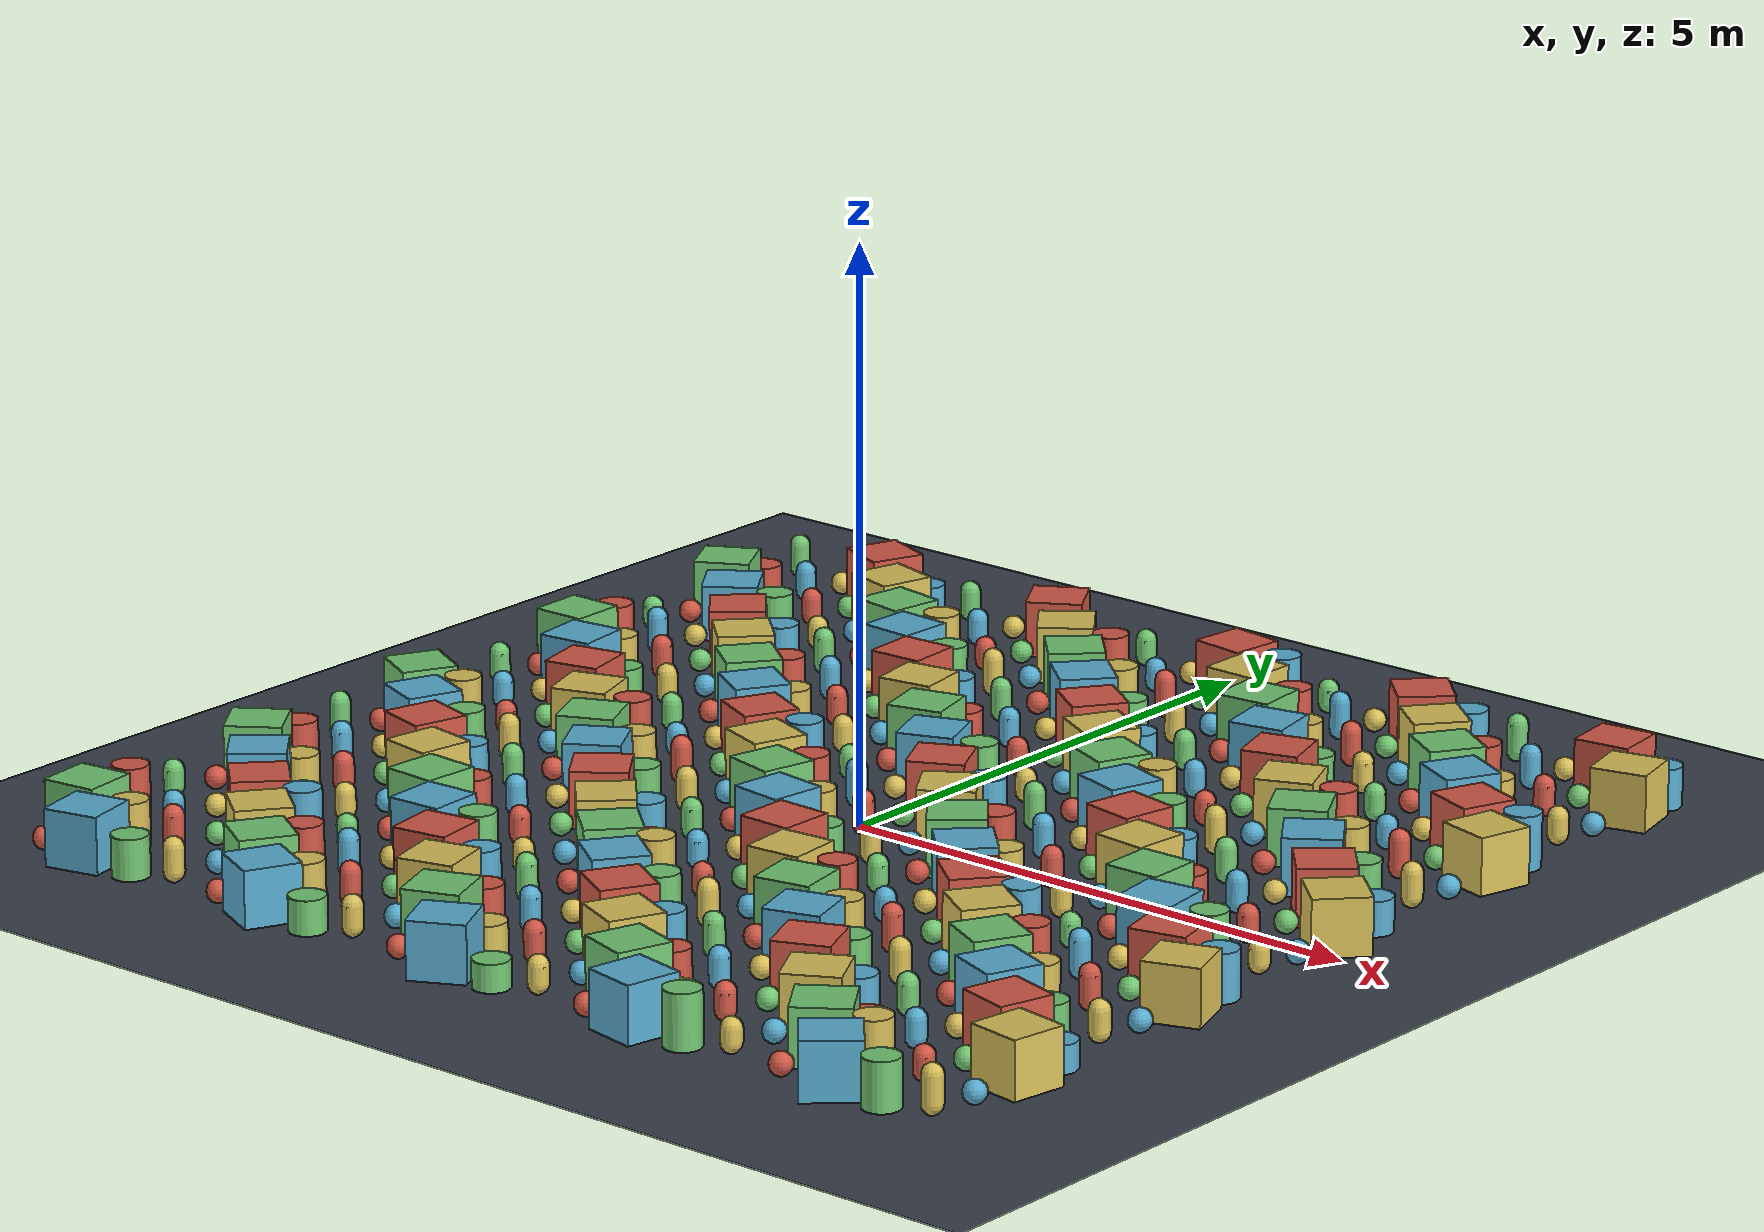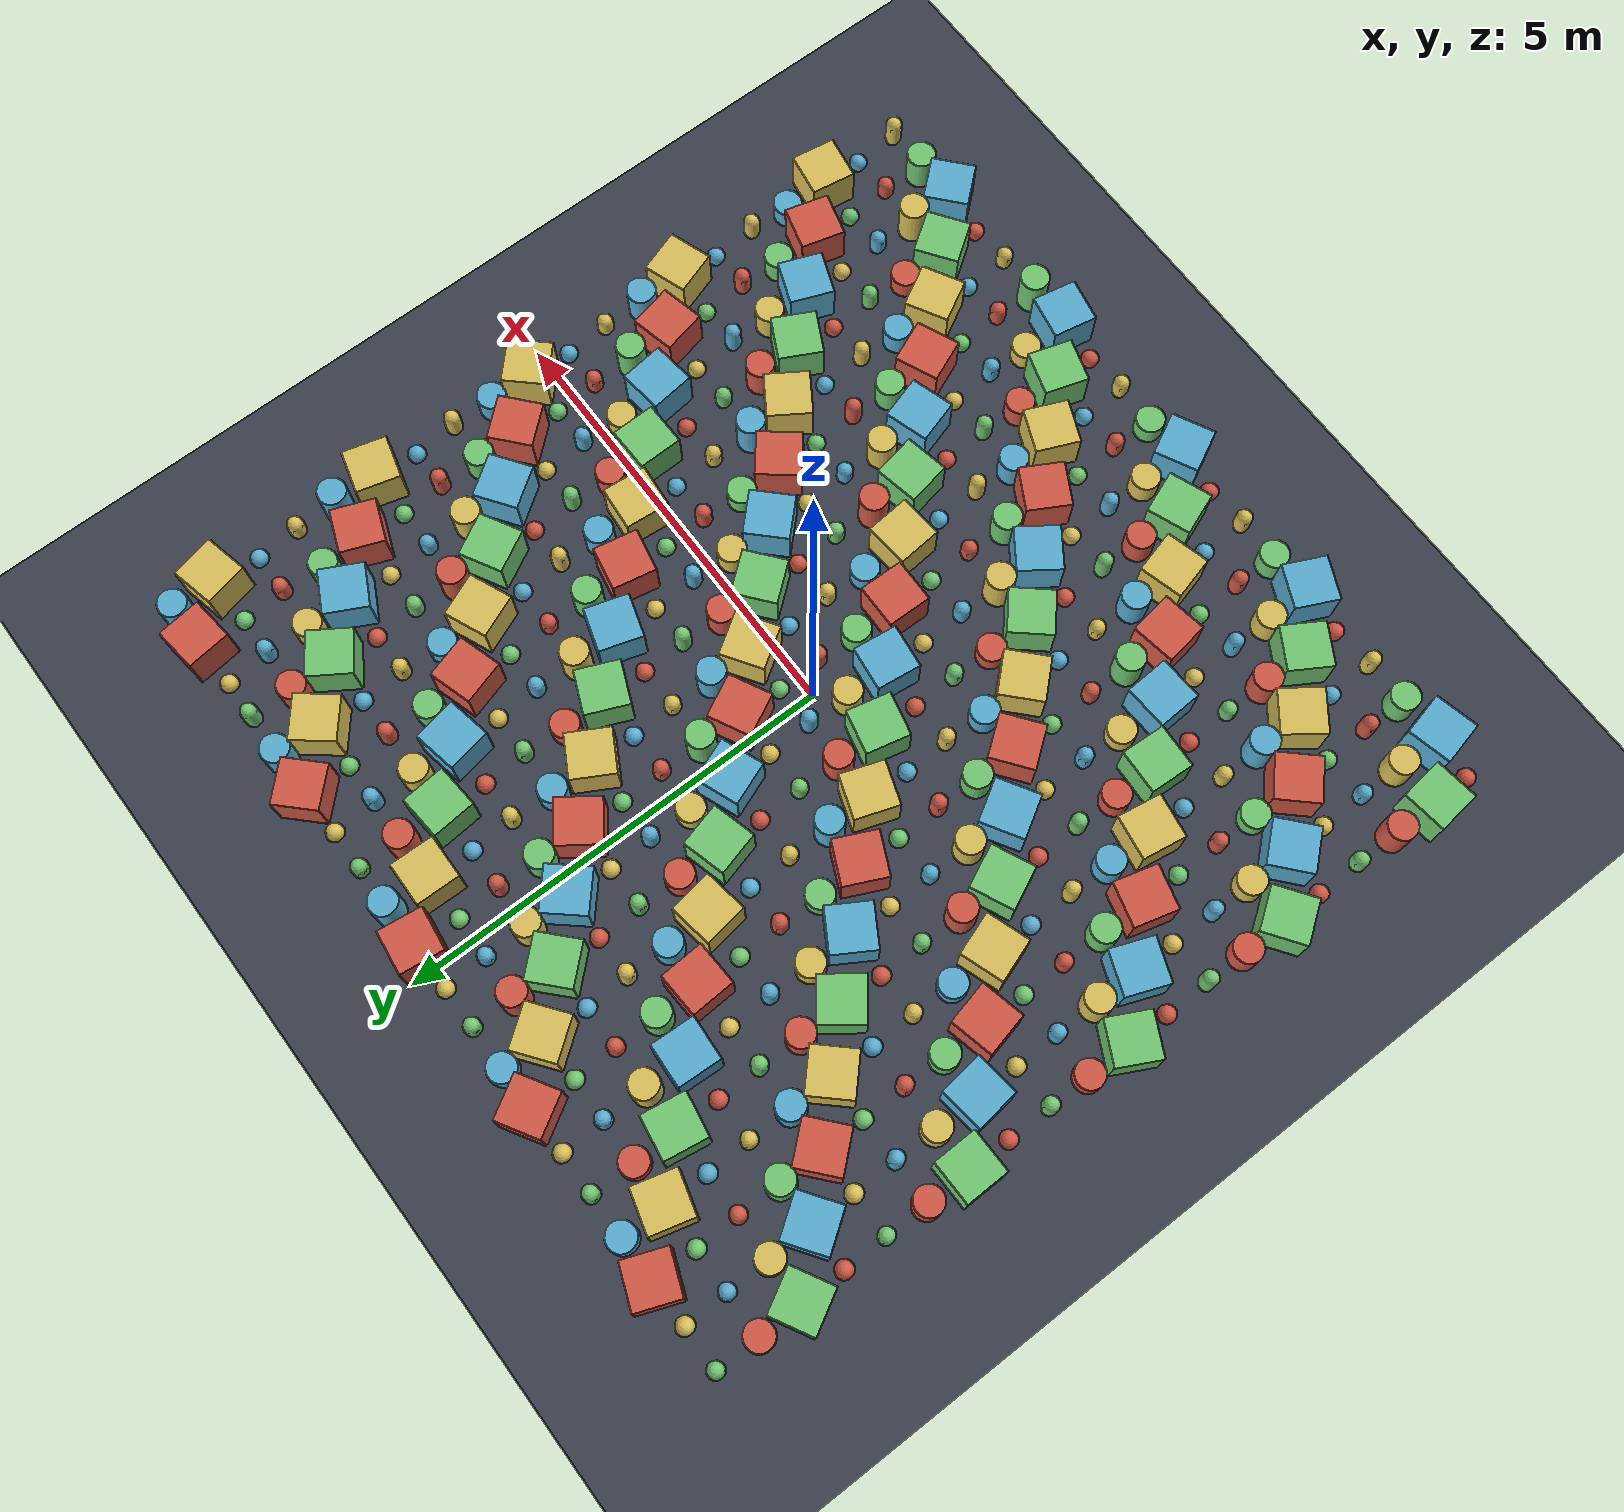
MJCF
<mujoco model="many_objects">
  <compiler angle="degree" autolimits="true"/>

  <visual>
    <headlight ambient="0.25 0.25 0.25" diffuse="0.4 0.4 0.4" specular="0.4 0.4 0.4"/>
    <quality shadowsize="4096" numslices="28" numstacks="16"/>
    <map znear="0.05" zfar="80" shadowclip="1.5" shadowscale="0.6"/>
  </visual>

  <asset>
    <texture name="grid" type="2d" builtin="checker" width="512" height="512"
             rgb1="0.18 0.20 0.24" rgb2="0.27 0.30 0.35"/>
    <material name="grid" texture="grid" texrepeat="1 1" texuniform="true"/>
    <material name="m0" rgba="0.82 0.35 0.28 1" specular="0.4" shininess="0.5"/>
    <material name="m1" rgba="0.35 0.68 0.82 1" specular="0.4" shininess="0.5"/>
    <material name="m2" rgba="0.45 0.78 0.45 1" specular="0.4" shininess="0.5"/>
    <material name="m3" rgba="0.85 0.75 0.35 1" specular="0.4" shininess="0.5"/>
  </asset>

  <worldbody>
    <light name="sun" type="directional" pos="6 -8 10" dir="-0.4 0.55 -1"
           diffuse="0.7 0.7 0.7" specular="0.25 0.25 0.25" castshadow="true"/>

    <geom name="floor" type="plane" size="0 0 0.05" material="grid"/>

    <geom name="g_00_00" type="sphere" pos="-4.75 -4.75 0.100" size="0.100" material="m0"/>
    <geom name="g_00_01" type="box" pos="-4.25 -4.75 0.250" size="0.250 0.250 0.250" euler="0 0 13" material="m1"/>
    <geom name="g_00_02" type="cylinder" pos="-3.75 -4.75 0.180" size="0.160 0.180" material="m2"/>
    <geom name="g_00_03" type="capsule" fromto="-3.25 -4.75 0.150 -3.25 -4.75 0.360" size="0.090" material="m3"/>
    <geom name="g_00_04" type="sphere" pos="-2.75 -4.75 0.100" size="0.100" material="m0"/>
    <geom name="g_00_05" type="box" pos="-2.25 -4.75 0.250" size="0.250 0.250 0.250" euler="0 0 65" material="m1"/>
    <geom name="g_00_06" type="cylinder" pos="-1.75 -4.75 0.150" size="0.160 0.150" material="m2"/>
    <geom name="g_00_07" type="capsule" fromto="-1.25 -4.75 0.150 -1.25 -4.75 0.330" size="0.090" material="m3"/>
    <geom name="g_00_08" type="sphere" pos="-0.75 -4.75 0.100" size="0.100" material="m0"/>
    <geom name="g_00_09" type="box" pos="-0.25 -4.75 0.250" size="0.250 0.250 0.250" euler="0 0 27" material="m1"/>
    <geom name="g_00_10" type="cylinder" pos="0.25 -4.75 0.120" size="0.160 0.120" material="m2"/>
    <geom name="g_00_11" type="capsule" fromto="0.75 -4.75 0.150 0.75 -4.75 0.300" size="0.090" material="m3"/>
    <geom name="g_00_12" type="sphere" pos="1.25 -4.75 0.100" size="0.100" material="m0"/>
    <geom name="g_00_13" type="box" pos="1.75 -4.75 0.250" size="0.250 0.250 0.250" euler="0 0 79" material="m1"/>
    <geom name="g_00_14" type="cylinder" pos="2.25 -4.75 0.240" size="0.160 0.240" material="m2"/>
    <geom name="g_00_15" type="capsule" fromto="2.75 -4.75 0.150 2.75 -4.75 0.270" size="0.090" material="m3"/>
    <geom name="g_00_16" type="sphere" pos="3.25 -4.75 0.100" size="0.100" material="m0"/>
    <geom name="g_00_17" type="box" pos="3.75 -4.75 0.250" size="0.250 0.250 0.250" euler="0 0 41" material="m1"/>
    <geom name="g_00_18" type="cylinder" pos="4.25 -4.75 0.210" size="0.160 0.210" material="m2"/>
    <geom name="g_00_19" type="capsule" fromto="4.75 -4.75 0.150 4.75 -4.75 0.390" size="0.090" material="m3"/>
    <geom name="g_01_00" type="box" pos="-4.75 -4.25 0.250" size="0.250 0.250 0.250" euler="0 0 7" material="m2"/>
    <geom name="g_01_01" type="cylinder" pos="-4.25 -4.25 0.210" size="0.160 0.210" material="m3"/>
    <geom name="g_01_02" type="capsule" fromto="-3.75 -4.25 0.150 -3.75 -4.25 0.390" size="0.090" material="m0"/>
    <geom name="g_01_03" type="sphere" pos="-3.25 -4.25 0.100" size="0.100" material="m1"/>
    <geom name="g_01_04" type="box" pos="-2.75 -4.25 0.250" size="0.250 0.250 0.250" euler="0 0 59" material="m2"/>
    <geom name="g_01_05" type="cylinder" pos="-2.25 -4.25 0.180" size="0.160 0.180" material="m3"/>
    <geom name="g_01_06" type="capsule" fromto="-1.75 -4.25 0.150 -1.75 -4.25 0.360" size="0.090" material="m0"/>
    <geom name="g_01_07" type="sphere" pos="-1.25 -4.25 0.100" size="0.100" material="m1"/>
    <geom name="g_01_08" type="box" pos="-0.75 -4.25 0.250" size="0.250 0.250 0.250" euler="0 0 21" material="m2"/>
    <geom name="g_01_09" type="cylinder" pos="-0.25 -4.25 0.150" size="0.160 0.150" material="m3"/>
    <geom name="g_01_10" type="capsule" fromto="0.25 -4.25 0.150 0.25 -4.25 0.330" size="0.090" material="m0"/>
    <geom name="g_01_11" type="sphere" pos="0.75 -4.25 0.100" size="0.100" material="m1"/>
    <geom name="g_01_12" type="box" pos="1.25 -4.25 0.250" size="0.250 0.250 0.250" euler="0 0 73" material="m2"/>
    <geom name="g_01_13" type="cylinder" pos="1.75 -4.25 0.120" size="0.160 0.120" material="m3"/>
    <geom name="g_01_14" type="capsule" fromto="2.25 -4.25 0.150 2.25 -4.25 0.300" size="0.090" material="m0"/>
    <geom name="g_01_15" type="sphere" pos="2.75 -4.25 0.100" size="0.100" material="m1"/>
    <geom name="g_01_16" type="box" pos="3.25 -4.25 0.250" size="0.250 0.250 0.250" euler="0 0 35" material="m2"/>
    <geom name="g_01_17" type="cylinder" pos="3.75 -4.25 0.240" size="0.160 0.240" material="m3"/>
    <geom name="g_01_18" type="capsule" fromto="4.25 -4.25 0.150 4.25 -4.25 0.270" size="0.090" material="m0"/>
    <geom name="g_01_19" type="sphere" pos="4.75 -4.25 0.100" size="0.100" material="m1"/>
    <geom name="g_02_00" type="cylinder" pos="-4.75 -3.75 0.240" size="0.160 0.240" material="m0"/>
    <geom name="g_02_01" type="capsule" fromto="-4.25 -3.75 0.150 -4.25 -3.75 0.270" size="0.090" material="m1"/>
    <geom name="g_02_02" type="sphere" pos="-3.75 -3.75 0.100" size="0.100" material="m2"/>
    <geom name="g_02_03" type="box" pos="-3.25 -3.75 0.250" size="0.250 0.250 0.250" euler="0 0 53" material="m3"/>
    <geom name="g_02_04" type="cylinder" pos="-2.75 -3.75 0.210" size="0.160 0.210" material="m0"/>
    <geom name="g_02_05" type="capsule" fromto="-2.25 -3.75 0.150 -2.25 -3.75 0.390" size="0.090" material="m1"/>
    <geom name="g_02_06" type="sphere" pos="-1.75 -3.75 0.100" size="0.100" material="m2"/>
    <geom name="g_02_07" type="box" pos="-1.25 -3.75 0.250" size="0.250 0.250 0.250" euler="0 0 15" material="m3"/>
    <geom name="g_02_08" type="cylinder" pos="-0.75 -3.75 0.180" size="0.160 0.180" material="m0"/>
    <geom name="g_02_09" type="capsule" fromto="-0.25 -3.75 0.150 -0.25 -3.75 0.360" size="0.090" material="m1"/>
    <geom name="g_02_10" type="sphere" pos="0.25 -3.75 0.100" size="0.100" material="m2"/>
    <geom name="g_02_11" type="box" pos="0.75 -3.75 0.250" size="0.250 0.250 0.250" euler="0 0 67" material="m3"/>
    <geom name="g_02_12" type="cylinder" pos="1.25 -3.75 0.150" size="0.160 0.150" material="m0"/>
    <geom name="g_02_13" type="capsule" fromto="1.75 -3.75 0.150 1.75 -3.75 0.330" size="0.090" material="m1"/>
    <geom name="g_02_14" type="sphere" pos="2.25 -3.75 0.100" size="0.100" material="m2"/>
    <geom name="g_02_15" type="box" pos="2.75 -3.75 0.250" size="0.250 0.250 0.250" euler="0 0 29" material="m3"/>
    <geom name="g_02_16" type="cylinder" pos="3.25 -3.75 0.120" size="0.160 0.120" material="m0"/>
    <geom name="g_02_17" type="capsule" fromto="3.75 -3.75 0.150 3.75 -3.75 0.300" size="0.090" material="m1"/>
    <geom name="g_02_18" type="sphere" pos="4.25 -3.75 0.100" size="0.100" material="m2"/>
    <geom name="g_02_19" type="box" pos="4.75 -3.75 0.250" size="0.250 0.250 0.250" euler="0 0 81" material="m3"/>
    <geom name="g_03_00" type="capsule" fromto="-4.75 -3.25 0.150 -4.75 -3.25 0.300" size="0.090" material="m2"/>
    <geom name="g_03_01" type="sphere" pos="-4.25 -3.25 0.100" size="0.100" material="m3"/>
    <geom name="g_03_02" type="box" pos="-3.75 -3.25 0.250" size="0.250 0.250 0.250" euler="0 0 47" material="m0"/>
    <geom name="g_03_03" type="cylinder" pos="-3.25 -3.25 0.240" size="0.160 0.240" material="m1"/>
    <geom name="g_03_04" type="capsule" fromto="-2.75 -3.25 0.150 -2.75 -3.25 0.270" size="0.090" material="m2"/>
    <geom name="g_03_05" type="sphere" pos="-2.25 -3.25 0.100" size="0.100" material="m3"/>
    <geom name="g_03_06" type="box" pos="-1.75 -3.25 0.250" size="0.250 0.250 0.250" euler="0 0 9" material="m0"/>
    <geom name="g_03_07" type="cylinder" pos="-1.25 -3.25 0.210" size="0.160 0.210" material="m1"/>
    <geom name="g_03_08" type="capsule" fromto="-0.75 -3.25 0.150 -0.75 -3.25 0.390" size="0.090" material="m2"/>
    <geom name="g_03_09" type="sphere" pos="-0.25 -3.25 0.100" size="0.100" material="m3"/>
    <geom name="g_03_10" type="box" pos="0.25 -3.25 0.250" size="0.250 0.250 0.250" euler="0 0 61" material="m0"/>
    <geom name="g_03_11" type="cylinder" pos="0.75 -3.25 0.180" size="0.160 0.180" material="m1"/>
    <geom name="g_03_12" type="capsule" fromto="1.25 -3.25 0.150 1.25 -3.25 0.360" size="0.090" material="m2"/>
    <geom name="g_03_13" type="sphere" pos="1.75 -3.25 0.100" size="0.100" material="m3"/>
    <geom name="g_03_14" type="box" pos="2.25 -3.25 0.250" size="0.250 0.250 0.250" euler="0 0 23" material="m0"/>
    <geom name="g_03_15" type="cylinder" pos="2.75 -3.25 0.150" size="0.160 0.150" material="m1"/>
    <geom name="g_03_16" type="capsule" fromto="3.25 -3.25 0.150 3.25 -3.25 0.330" size="0.090" material="m2"/>
    <geom name="g_03_17" type="sphere" pos="3.75 -3.25 0.100" size="0.100" material="m3"/>
    <geom name="g_03_18" type="box" pos="4.25 -3.25 0.250" size="0.250 0.250 0.250" euler="0 0 75" material="m0"/>
    <geom name="g_03_19" type="cylinder" pos="4.75 -3.25 0.120" size="0.160 0.120" material="m1"/>
    <geom name="g_04_00" type="sphere" pos="-4.75 -2.75 0.100" size="0.100" material="m0"/>
    <geom name="g_04_01" type="box" pos="-4.25 -2.75 0.250" size="0.250 0.250 0.250" euler="0 0 41" material="m1"/>
    <geom name="g_04_02" type="cylinder" pos="-3.75 -2.75 0.120" size="0.160 0.120" material="m2"/>
    <geom name="g_04_03" type="capsule" fromto="-3.25 -2.75 0.150 -3.25 -2.75 0.300" size="0.090" material="m3"/>
    <geom name="g_04_04" type="sphere" pos="-2.75 -2.75 0.100" size="0.100" material="m0"/>
    <geom name="g_04_05" type="box" pos="-2.25 -2.75 0.250" size="0.250 0.250 0.250" euler="0 0 3" material="m1"/>
    <geom name="g_04_06" type="cylinder" pos="-1.75 -2.75 0.240" size="0.160 0.240" material="m2"/>
    <geom name="g_04_07" type="capsule" fromto="-1.25 -2.75 0.150 -1.25 -2.75 0.270" size="0.090" material="m3"/>
    <geom name="g_04_08" type="sphere" pos="-0.75 -2.75 0.100" size="0.100" material="m0"/>
    <geom name="g_04_09" type="box" pos="-0.25 -2.75 0.250" size="0.250 0.250 0.250" euler="0 0 55" material="m1"/>
    <geom name="g_04_10" type="cylinder" pos="0.25 -2.75 0.210" size="0.160 0.210" material="m2"/>
    <geom name="g_04_11" type="capsule" fromto="0.75 -2.75 0.150 0.75 -2.75 0.390" size="0.090" material="m3"/>
    <geom name="g_04_12" type="sphere" pos="1.25 -2.75 0.100" size="0.100" material="m0"/>
    <geom name="g_04_13" type="box" pos="1.75 -2.75 0.250" size="0.250 0.250 0.250" euler="0 0 17" material="m1"/>
    <geom name="g_04_14" type="cylinder" pos="2.25 -2.75 0.180" size="0.160 0.180" material="m2"/>
    <geom name="g_04_15" type="capsule" fromto="2.75 -2.75 0.150 2.75 -2.75 0.360" size="0.090" material="m3"/>
    <geom name="g_04_16" type="sphere" pos="3.25 -2.75 0.100" size="0.100" material="m0"/>
    <geom name="g_04_17" type="box" pos="3.75 -2.75 0.250" size="0.250 0.250 0.250" euler="0 0 69" material="m1"/>
    <geom name="g_04_18" type="cylinder" pos="4.25 -2.75 0.150" size="0.160 0.150" material="m2"/>
    <geom name="g_04_19" type="capsule" fromto="4.75 -2.75 0.150 4.75 -2.75 0.330" size="0.090" material="m3"/>
    <geom name="g_05_00" type="box" pos="-4.75 -2.25 0.250" size="0.250 0.250 0.250" euler="0 0 35" material="m2"/>
    <geom name="g_05_01" type="cylinder" pos="-4.25 -2.25 0.150" size="0.160 0.150" material="m3"/>
    <geom name="g_05_02" type="capsule" fromto="-3.75 -2.25 0.150 -3.75 -2.25 0.330" size="0.090" material="m0"/>
    <geom name="g_05_03" type="sphere" pos="-3.25 -2.25 0.100" size="0.100" material="m1"/>
    <geom name="g_05_04" type="box" pos="-2.75 -2.25 0.250" size="0.250 0.250 0.250" euler="0 0 87" material="m2"/>
    <geom name="g_05_05" type="cylinder" pos="-2.25 -2.25 0.120" size="0.160 0.120" material="m3"/>
    <geom name="g_05_06" type="capsule" fromto="-1.75 -2.25 0.150 -1.75 -2.25 0.300" size="0.090" material="m0"/>
    <geom name="g_05_07" type="sphere" pos="-1.25 -2.25 0.100" size="0.100" material="m1"/>
    <geom name="g_05_08" type="box" pos="-0.75 -2.25 0.250" size="0.250 0.250 0.250" euler="0 0 49" material="m2"/>
    <geom name="g_05_09" type="cylinder" pos="-0.25 -2.25 0.240" size="0.160 0.240" material="m3"/>
    <geom name="g_05_10" type="capsule" fromto="0.25 -2.25 0.150 0.25 -2.25 0.270" size="0.090" material="m0"/>
    <geom name="g_05_11" type="sphere" pos="0.75 -2.25 0.100" size="0.100" material="m1"/>
    <geom name="g_05_12" type="box" pos="1.25 -2.25 0.250" size="0.250 0.250 0.250" euler="0 0 11" material="m2"/>
    <geom name="g_05_13" type="cylinder" pos="1.75 -2.25 0.210" size="0.160 0.210" material="m3"/>
    <geom name="g_05_14" type="capsule" fromto="2.25 -2.25 0.150 2.25 -2.25 0.390" size="0.090" material="m0"/>
    <geom name="g_05_15" type="sphere" pos="2.75 -2.25 0.100" size="0.100" material="m1"/>
    <geom name="g_05_16" type="box" pos="3.25 -2.25 0.250" size="0.250 0.250 0.250" euler="0 0 63" material="m2"/>
    <geom name="g_05_17" type="cylinder" pos="3.75 -2.25 0.180" size="0.160 0.180" material="m3"/>
    <geom name="g_05_18" type="capsule" fromto="4.25 -2.25 0.150 4.25 -2.25 0.360" size="0.090" material="m0"/>
    <geom name="g_05_19" type="sphere" pos="4.75 -2.25 0.100" size="0.100" material="m1"/>
    <geom name="g_06_00" type="cylinder" pos="-4.75 -1.75 0.180" size="0.160 0.180" material="m0"/>
    <geom name="g_06_01" type="capsule" fromto="-4.25 -1.75 0.150 -4.25 -1.75 0.360" size="0.090" material="m1"/>
    <geom name="g_06_02" type="sphere" pos="-3.75 -1.75 0.100" size="0.100" material="m2"/>
    <geom name="g_06_03" type="box" pos="-3.25 -1.75 0.250" size="0.250 0.250 0.250" euler="0 0 81" material="m3"/>
    <geom name="g_06_04" type="cylinder" pos="-2.75 -1.75 0.150" size="0.160 0.150" material="m0"/>
    <geom name="g_06_05" type="capsule" fromto="-2.25 -1.75 0.150 -2.25 -1.75 0.330" size="0.090" material="m1"/>
    <geom name="g_06_06" type="sphere" pos="-1.75 -1.75 0.100" size="0.100" material="m2"/>
    <geom name="g_06_07" type="box" pos="-1.25 -1.75 0.250" size="0.250 0.250 0.250" euler="0 0 43" material="m3"/>
    <geom name="g_06_08" type="cylinder" pos="-0.75 -1.75 0.120" size="0.160 0.120" material="m0"/>
    <geom name="g_06_09" type="capsule" fromto="-0.25 -1.75 0.150 -0.25 -1.75 0.300" size="0.090" material="m1"/>
    <geom name="g_06_10" type="sphere" pos="0.25 -1.75 0.100" size="0.100" material="m2"/>
    <geom name="g_06_11" type="box" pos="0.75 -1.75 0.250" size="0.250 0.250 0.250" euler="0 0 5" material="m3"/>
    <geom name="g_06_12" type="cylinder" pos="1.25 -1.75 0.240" size="0.160 0.240" material="m0"/>
    <geom name="g_06_13" type="capsule" fromto="1.75 -1.75 0.150 1.75 -1.75 0.270" size="0.090" material="m1"/>
    <geom name="g_06_14" type="sphere" pos="2.25 -1.75 0.100" size="0.100" material="m2"/>
    <geom name="g_06_15" type="box" pos="2.75 -1.75 0.250" size="0.250 0.250 0.250" euler="0 0 57" material="m3"/>
    <geom name="g_06_16" type="cylinder" pos="3.25 -1.75 0.210" size="0.160 0.210" material="m0"/>
    <geom name="g_06_17" type="capsule" fromto="3.75 -1.75 0.150 3.75 -1.75 0.390" size="0.090" material="m1"/>
    <geom name="g_06_18" type="sphere" pos="4.25 -1.75 0.100" size="0.100" material="m2"/>
    <geom name="g_06_19" type="box" pos="4.75 -1.75 0.250" size="0.250 0.250 0.250" euler="0 0 19" material="m3"/>
    <geom name="g_07_00" type="capsule" fromto="-4.75 -1.25 0.150 -4.75 -1.25 0.390" size="0.090" material="m2"/>
    <geom name="g_07_01" type="sphere" pos="-4.25 -1.25 0.100" size="0.100" material="m3"/>
    <geom name="g_07_02" type="box" pos="-3.75 -1.25 0.250" size="0.250 0.250 0.250" euler="0 0 75" material="m0"/>
    <geom name="g_07_03" type="cylinder" pos="-3.25 -1.25 0.180" size="0.160 0.180" material="m1"/>
    <geom name="g_07_04" type="capsule" fromto="-2.75 -1.25 0.150 -2.75 -1.25 0.360" size="0.090" material="m2"/>
    <geom name="g_07_05" type="sphere" pos="-2.25 -1.25 0.100" size="0.100" material="m3"/>
    <geom name="g_07_06" type="box" pos="-1.75 -1.25 0.250" size="0.250 0.250 0.250" euler="0 0 37" material="m0"/>
    <geom name="g_07_07" type="cylinder" pos="-1.25 -1.25 0.150" size="0.160 0.150" material="m1"/>
    <geom name="g_07_08" type="capsule" fromto="-0.75 -1.25 0.150 -0.75 -1.25 0.330" size="0.090" material="m2"/>
    <geom name="g_07_09" type="sphere" pos="-0.25 -1.25 0.100" size="0.100" material="m3"/>
    <geom name="g_07_10" type="box" pos="0.25 -1.25 0.250" size="0.250 0.250 0.250" euler="0 0 89" material="m0"/>
    <geom name="g_07_11" type="cylinder" pos="0.75 -1.25 0.120" size="0.160 0.120" material="m1"/>
    <geom name="g_07_12" type="capsule" fromto="1.25 -1.25 0.150 1.25 -1.25 0.300" size="0.090" material="m2"/>
    <geom name="g_07_13" type="sphere" pos="1.75 -1.25 0.100" size="0.100" material="m3"/>
    <geom name="g_07_14" type="box" pos="2.25 -1.25 0.250" size="0.250 0.250 0.250" euler="0 0 51" material="m0"/>
    <geom name="g_07_15" type="cylinder" pos="2.75 -1.25 0.240" size="0.160 0.240" material="m1"/>
    <geom name="g_07_16" type="capsule" fromto="3.25 -1.25 0.150 3.25 -1.25 0.270" size="0.090" material="m2"/>
    <geom name="g_07_17" type="sphere" pos="3.75 -1.25 0.100" size="0.100" material="m3"/>
    <geom name="g_07_18" type="box" pos="4.25 -1.25 0.250" size="0.250 0.250 0.250" euler="0 0 13" material="m0"/>
    <geom name="g_07_19" type="cylinder" pos="4.75 -1.25 0.210" size="0.160 0.210" material="m1"/>
    <geom name="g_08_00" type="sphere" pos="-4.75 -0.75 0.100" size="0.100" material="m0"/>
    <geom name="g_08_01" type="box" pos="-4.25 -0.75 0.250" size="0.250 0.250 0.250" euler="0 0 69" material="m1"/>
    <geom name="g_08_02" type="cylinder" pos="-3.75 -0.75 0.210" size="0.160 0.210" material="m2"/>
    <geom name="g_08_03" type="capsule" fromto="-3.25 -0.75 0.150 -3.25 -0.75 0.390" size="0.090" material="m3"/>
    <geom name="g_08_04" type="sphere" pos="-2.75 -0.75 0.100" size="0.100" material="m0"/>
    <geom name="g_08_05" type="box" pos="-2.25 -0.75 0.250" size="0.250 0.250 0.250" euler="0 0 31" material="m1"/>
    <geom name="g_08_06" type="cylinder" pos="-1.75 -0.75 0.180" size="0.160 0.180" material="m2"/>
    <geom name="g_08_07" type="capsule" fromto="-1.25 -0.75 0.150 -1.25 -0.75 0.360" size="0.090" material="m3"/>
    <geom name="g_08_08" type="sphere" pos="-0.75 -0.75 0.100" size="0.100" material="m0"/>
    <geom name="g_08_09" type="box" pos="-0.25 -0.75 0.250" size="0.250 0.250 0.250" euler="0 0 83" material="m1"/>
    <geom name="g_08_10" type="cylinder" pos="0.25 -0.75 0.150" size="0.160 0.150" material="m2"/>
    <geom name="g_08_11" type="capsule" fromto="0.75 -0.75 0.150 0.75 -0.75 0.330" size="0.090" material="m3"/>
    <geom name="g_08_12" type="sphere" pos="1.25 -0.75 0.100" size="0.100" material="m0"/>
    <geom name="g_08_13" type="box" pos="1.75 -0.75 0.250" size="0.250 0.250 0.250" euler="0 0 45" material="m1"/>
    <geom name="g_08_14" type="cylinder" pos="2.25 -0.75 0.120" size="0.160 0.120" material="m2"/>
    <geom name="g_08_15" type="capsule" fromto="2.75 -0.75 0.150 2.75 -0.75 0.300" size="0.090" material="m3"/>
    <geom name="g_08_16" type="sphere" pos="3.25 -0.75 0.100" size="0.100" material="m0"/>
    <geom name="g_08_17" type="box" pos="3.75 -0.75 0.250" size="0.250 0.250 0.250" euler="0 0 7" material="m1"/>
    <geom name="g_08_18" type="cylinder" pos="4.25 -0.75 0.240" size="0.160 0.240" material="m2"/>
    <geom name="g_08_19" type="capsule" fromto="4.75 -0.75 0.150 4.75 -0.75 0.270" size="0.090" material="m3"/>
    <geom name="g_09_00" type="box" pos="-4.75 -0.25 0.250" size="0.250 0.250 0.250" euler="0 0 63" material="m2"/>
    <geom name="g_09_01" type="cylinder" pos="-4.25 -0.25 0.240" size="0.160 0.240" material="m3"/>
    <geom name="g_09_02" type="capsule" fromto="-3.75 -0.25 0.150 -3.75 -0.25 0.270" size="0.090" material="m0"/>
    <geom name="g_09_03" type="sphere" pos="-3.25 -0.25 0.100" size="0.100" material="m1"/>
    <geom name="g_09_04" type="box" pos="-2.75 -0.25 0.250" size="0.250 0.250 0.250" euler="0 0 25" material="m2"/>
    <geom name="g_09_05" type="cylinder" pos="-2.25 -0.25 0.210" size="0.160 0.210" material="m3"/>
    <geom name="g_09_06" type="capsule" fromto="-1.75 -0.25 0.150 -1.75 -0.25 0.390" size="0.090" material="m0"/>
    <geom name="g_09_07" type="sphere" pos="-1.25 -0.25 0.100" size="0.100" material="m1"/>
    <geom name="g_09_08" type="box" pos="-0.75 -0.25 0.250" size="0.250 0.250 0.250" euler="0 0 77" material="m2"/>
    <geom name="g_09_09" type="cylinder" pos="-0.25 -0.25 0.180" size="0.160 0.180" material="m3"/>
    <geom name="g_09_10" type="capsule" fromto="0.25 -0.25 0.150 0.25 -0.25 0.360" size="0.090" material="m0"/>
    <geom name="g_09_11" type="sphere" pos="0.75 -0.25 0.100" size="0.100" material="m1"/>
    <geom name="g_09_12" type="box" pos="1.25 -0.25 0.250" size="0.250 0.250 0.250" euler="0 0 39" material="m2"/>
    <geom name="g_09_13" type="cylinder" pos="1.75 -0.25 0.150" size="0.160 0.150" material="m3"/>
    <geom name="g_09_14" type="capsule" fromto="2.25 -0.25 0.150 2.25 -0.25 0.330" size="0.090" material="m0"/>
    <geom name="g_09_15" type="sphere" pos="2.75 -0.25 0.100" size="0.100" material="m1"/>
    <geom name="g_09_16" type="box" pos="3.25 -0.25 0.250" size="0.250 0.250 0.250" euler="0 0 1" material="m2"/>
    <geom name="g_09_17" type="cylinder" pos="3.75 -0.25 0.120" size="0.160 0.120" material="m3"/>
    <geom name="g_09_18" type="capsule" fromto="4.25 -0.25 0.150 4.25 -0.25 0.300" size="0.090" material="m0"/>
    <geom name="g_09_19" type="sphere" pos="4.75 -0.25 0.100" size="0.100" material="m1"/>
    <geom name="g_10_00" type="cylinder" pos="-4.75 0.25 0.120" size="0.160 0.120" material="m0"/>
    <geom name="g_10_01" type="capsule" fromto="-4.25 0.25 0.150 -4.25 0.25 0.300" size="0.090" material="m1"/>
    <geom name="g_10_02" type="sphere" pos="-3.75 0.25 0.100" size="0.100" material="m2"/>
    <geom name="g_10_03" type="box" pos="-3.25 0.25 0.250" size="0.250 0.250 0.250" euler="0 0 19" material="m3"/>
    <geom name="g_10_04" type="cylinder" pos="-2.75 0.25 0.240" size="0.160 0.240" material="m0"/>
    <geom name="g_10_05" type="capsule" fromto="-2.25 0.25 0.150 -2.25 0.25 0.270" size="0.090" material="m1"/>
    <geom name="g_10_06" type="sphere" pos="-1.75 0.25 0.100" size="0.100" material="m2"/>
    <geom name="g_10_07" type="box" pos="-1.25 0.25 0.250" size="0.250 0.250 0.250" euler="0 0 71" material="m3"/>
    <geom name="g_10_08" type="cylinder" pos="-0.75 0.25 0.210" size="0.160 0.210" material="m0"/>
    <geom name="g_10_09" type="capsule" fromto="-0.25 0.25 0.150 -0.25 0.25 0.390" size="0.090" material="m1"/>
    <geom name="g_10_10" type="sphere" pos="0.25 0.25 0.100" size="0.100" material="m2"/>
    <geom name="g_10_11" type="box" pos="0.75 0.25 0.250" size="0.250 0.250 0.250" euler="0 0 33" material="m3"/>
    <geom name="g_10_12" type="cylinder" pos="1.25 0.25 0.180" size="0.160 0.180" material="m0"/>
    <geom name="g_10_13" type="capsule" fromto="1.75 0.25 0.150 1.75 0.25 0.360" size="0.090" material="m1"/>
    <geom name="g_10_14" type="sphere" pos="2.25 0.25 0.100" size="0.100" material="m2"/>
    <geom name="g_10_15" type="box" pos="2.75 0.25 0.250" size="0.250 0.250 0.250" euler="0 0 85" material="m3"/>
    <geom name="g_10_16" type="cylinder" pos="3.25 0.25 0.150" size="0.160 0.150" material="m0"/>
    <geom name="g_10_17" type="capsule" fromto="3.75 0.25 0.150 3.75 0.25 0.330" size="0.090" material="m1"/>
    <geom name="g_10_18" type="sphere" pos="4.25 0.25 0.100" size="0.100" material="m2"/>
    <geom name="g_10_19" type="box" pos="4.75 0.25 0.250" size="0.250 0.250 0.250" euler="0 0 47" material="m3"/>
    <geom name="g_11_00" type="capsule" fromto="-4.75 0.75 0.150 -4.75 0.75 0.330" size="0.090" material="m2"/>
    <geom name="g_11_01" type="sphere" pos="-4.25 0.75 0.100" size="0.100" material="m3"/>
    <geom name="g_11_02" type="box" pos="-3.75 0.75 0.250" size="0.250 0.250 0.250" euler="0 0 13" material="m0"/>
    <geom name="g_11_03" type="cylinder" pos="-3.25 0.75 0.120" size="0.160 0.120" material="m1"/>
    <geom name="g_11_04" type="capsule" fromto="-2.75 0.75 0.150 -2.75 0.75 0.300" size="0.090" material="m2"/>
    <geom name="g_11_05" type="sphere" pos="-2.25 0.75 0.100" size="0.100" material="m3"/>
    <geom name="g_11_06" type="box" pos="-1.75 0.75 0.250" size="0.250 0.250 0.250" euler="0 0 65" material="m0"/>
    <geom name="g_11_07" type="cylinder" pos="-1.25 0.75 0.240" size="0.160 0.240" material="m1"/>
    <geom name="g_11_08" type="capsule" fromto="-0.75 0.75 0.150 -0.75 0.75 0.270" size="0.090" material="m2"/>
    <geom name="g_11_09" type="sphere" pos="-0.25 0.75 0.100" size="0.100" material="m3"/>
    <geom name="g_11_10" type="box" pos="0.25 0.75 0.250" size="0.250 0.250 0.250" euler="0 0 27" material="m0"/>
    <geom name="g_11_11" type="cylinder" pos="0.75 0.75 0.210" size="0.160 0.210" material="m1"/>
    <geom name="g_11_12" type="capsule" fromto="1.25 0.75 0.150 1.25 0.75 0.390" size="0.090" material="m2"/>
    <geom name="g_11_13" type="sphere" pos="1.75 0.75 0.100" size="0.100" material="m3"/>
    <geom name="g_11_14" type="box" pos="2.25 0.75 0.250" size="0.250 0.250 0.250" euler="0 0 79" material="m0"/>
    <geom name="g_11_15" type="cylinder" pos="2.75 0.75 0.180" size="0.160 0.180" material="m1"/>
    <geom name="g_11_16" type="capsule" fromto="3.25 0.75 0.150 3.25 0.75 0.360" size="0.090" material="m2"/>
    <geom name="g_11_17" type="sphere" pos="3.75 0.75 0.100" size="0.100" material="m3"/>
    <geom name="g_11_18" type="box" pos="4.25 0.75 0.250" size="0.250 0.250 0.250" euler="0 0 41" material="m0"/>
    <geom name="g_11_19" type="cylinder" pos="4.75 0.75 0.150" size="0.160 0.150" material="m1"/>
    <geom name="g_12_00" type="sphere" pos="-4.75 1.25 0.100" size="0.100" material="m0"/>
    <geom name="g_12_01" type="box" pos="-4.25 1.25 0.250" size="0.250 0.250 0.250" euler="0 0 7" material="m1"/>
    <geom name="g_12_02" type="cylinder" pos="-3.75 1.25 0.150" size="0.160 0.150" material="m2"/>
    <geom name="g_12_03" type="capsule" fromto="-3.25 1.25 0.150 -3.25 1.25 0.330" size="0.090" material="m3"/>
    <geom name="g_12_04" type="sphere" pos="-2.75 1.25 0.100" size="0.100" material="m0"/>
    <geom name="g_12_05" type="box" pos="-2.25 1.25 0.250" size="0.250 0.250 0.250" euler="0 0 59" material="m1"/>
    <geom name="g_12_06" type="cylinder" pos="-1.75 1.25 0.120" size="0.160 0.120" material="m2"/>
    <geom name="g_12_07" type="capsule" fromto="-1.25 1.25 0.150 -1.25 1.25 0.300" size="0.090" material="m3"/>
    <geom name="g_12_08" type="sphere" pos="-0.75 1.25 0.100" size="0.100" material="m0"/>
    <geom name="g_12_09" type="box" pos="-0.25 1.25 0.250" size="0.250 0.250 0.250" euler="0 0 21" material="m1"/>
    <geom name="g_12_10" type="cylinder" pos="0.25 1.25 0.240" size="0.160 0.240" material="m2"/>
    <geom name="g_12_11" type="capsule" fromto="0.75 1.25 0.150 0.75 1.25 0.270" size="0.090" material="m3"/>
    <geom name="g_12_12" type="sphere" pos="1.25 1.25 0.100" size="0.100" material="m0"/>
    <geom name="g_12_13" type="box" pos="1.75 1.25 0.250" size="0.250 0.250 0.250" euler="0 0 73" material="m1"/>
    <geom name="g_12_14" type="cylinder" pos="2.25 1.25 0.210" size="0.160 0.210" material="m2"/>
    <geom name="g_12_15" type="capsule" fromto="2.75 1.25 0.150 2.75 1.25 0.390" size="0.090" material="m3"/>
    <geom name="g_12_16" type="sphere" pos="3.25 1.25 0.100" size="0.100" material="m0"/>
    <geom name="g_12_17" type="box" pos="3.75 1.25 0.250" size="0.250 0.250 0.250" euler="0 0 35" material="m1"/>
    <geom name="g_12_18" type="cylinder" pos="4.25 1.25 0.180" size="0.160 0.180" material="m2"/>
    <geom name="g_12_19" type="capsule" fromto="4.75 1.25 0.150 4.75 1.25 0.360" size="0.090" material="m3"/>
    <geom name="g_13_00" type="box" pos="-4.75 1.75 0.250" size="0.250 0.250 0.250" euler="0 0 1" material="m2"/>
    <geom name="g_13_01" type="cylinder" pos="-4.25 1.75 0.180" size="0.160 0.180" material="m3"/>
    <geom name="g_13_02" type="capsule" fromto="-3.75 1.75 0.150 -3.75 1.75 0.360" size="0.090" material="m0"/>
    <geom name="g_13_03" type="sphere" pos="-3.25 1.75 0.100" size="0.100" material="m1"/>
    <geom name="g_13_04" type="box" pos="-2.75 1.75 0.250" size="0.250 0.250 0.250" euler="0 0 53" material="m2"/>
    <geom name="g_13_05" type="cylinder" pos="-2.25 1.75 0.150" size="0.160 0.150" material="m3"/>
    <geom name="g_13_06" type="capsule" fromto="-1.75 1.75 0.150 -1.75 1.75 0.330" size="0.090" material="m0"/>
    <geom name="g_13_07" type="sphere" pos="-1.25 1.75 0.100" size="0.100" material="m1"/>
    <geom name="g_13_08" type="box" pos="-0.75 1.75 0.250" size="0.250 0.250 0.250" euler="0 0 15" material="m2"/>
    <geom name="g_13_09" type="cylinder" pos="-0.25 1.75 0.120" size="0.160 0.120" material="m3"/>
    <geom name="g_13_10" type="capsule" fromto="0.25 1.75 0.150 0.25 1.75 0.300" size="0.090" material="m0"/>
    <geom name="g_13_11" type="sphere" pos="0.75 1.75 0.100" size="0.100" material="m1"/>
    <geom name="g_13_12" type="box" pos="1.25 1.75 0.250" size="0.250 0.250 0.250" euler="0 0 67" material="m2"/>
    <geom name="g_13_13" type="cylinder" pos="1.75 1.75 0.240" size="0.160 0.240" material="m3"/>
    <geom name="g_13_14" type="capsule" fromto="2.25 1.75 0.150 2.25 1.75 0.270" size="0.090" material="m0"/>
    <geom name="g_13_15" type="sphere" pos="2.75 1.75 0.100" size="0.100" material="m1"/>
    <geom name="g_13_16" type="box" pos="3.25 1.75 0.250" size="0.250 0.250 0.250" euler="0 0 29" material="m2"/>
    <geom name="g_13_17" type="cylinder" pos="3.75 1.75 0.210" size="0.160 0.210" material="m3"/>
    <geom name="g_13_18" type="capsule" fromto="4.25 1.75 0.150 4.25 1.75 0.390" size="0.090" material="m0"/>
    <geom name="g_13_19" type="sphere" pos="4.75 1.75 0.100" size="0.100" material="m1"/>
    <geom name="g_14_00" type="cylinder" pos="-4.75 2.25 0.210" size="0.160 0.210" material="m0"/>
    <geom name="g_14_01" type="capsule" fromto="-4.25 2.25 0.150 -4.25 2.25 0.390" size="0.090" material="m1"/>
    <geom name="g_14_02" type="sphere" pos="-3.75 2.25 0.100" size="0.100" material="m2"/>
    <geom name="g_14_03" type="box" pos="-3.25 2.25 0.250" size="0.250 0.250 0.250" euler="0 0 47" material="m3"/>
    <geom name="g_14_04" type="cylinder" pos="-2.75 2.25 0.180" size="0.160 0.180" material="m0"/>
    <geom name="g_14_05" type="capsule" fromto="-2.25 2.25 0.150 -2.25 2.25 0.360" size="0.090" material="m1"/>
    <geom name="g_14_06" type="sphere" pos="-1.75 2.25 0.100" size="0.100" material="m2"/>
    <geom name="g_14_07" type="box" pos="-1.25 2.25 0.250" size="0.250 0.250 0.250" euler="0 0 9" material="m3"/>
    <geom name="g_14_08" type="cylinder" pos="-0.75 2.25 0.150" size="0.160 0.150" material="m0"/>
    <geom name="g_14_09" type="capsule" fromto="-0.25 2.25 0.150 -0.25 2.25 0.330" size="0.090" material="m1"/>
    <geom name="g_14_10" type="sphere" pos="0.25 2.25 0.100" size="0.100" material="m2"/>
    <geom name="g_14_11" type="box" pos="0.75 2.25 0.250" size="0.250 0.250 0.250" euler="0 0 61" material="m3"/>
    <geom name="g_14_12" type="cylinder" pos="1.25 2.25 0.120" size="0.160 0.120" material="m0"/>
    <geom name="g_14_13" type="capsule" fromto="1.75 2.25 0.150 1.75 2.25 0.300" size="0.090" material="m1"/>
    <geom name="g_14_14" type="sphere" pos="2.25 2.25 0.100" size="0.100" material="m2"/>
    <geom name="g_14_15" type="box" pos="2.75 2.25 0.250" size="0.250 0.250 0.250" euler="0 0 23" material="m3"/>
    <geom name="g_14_16" type="cylinder" pos="3.25 2.25 0.240" size="0.160 0.240" material="m0"/>
    <geom name="g_14_17" type="capsule" fromto="3.75 2.25 0.150 3.75 2.25 0.270" size="0.090" material="m1"/>
    <geom name="g_14_18" type="sphere" pos="4.25 2.25 0.100" size="0.100" material="m2"/>
    <geom name="g_14_19" type="box" pos="4.75 2.25 0.250" size="0.250 0.250 0.250" euler="0 0 75" material="m3"/>
    <geom name="g_15_00" type="capsule" fromto="-4.75 2.75 0.150 -4.75 2.75 0.270" size="0.090" material="m2"/>
    <geom name="g_15_01" type="sphere" pos="-4.25 2.75 0.100" size="0.100" material="m3"/>
    <geom name="g_15_02" type="box" pos="-3.75 2.75 0.250" size="0.250 0.250 0.250" euler="0 0 41" material="m0"/>
    <geom name="g_15_03" type="cylinder" pos="-3.25 2.75 0.210" size="0.160 0.210" material="m1"/>
    <geom name="g_15_04" type="capsule" fromto="-2.75 2.75 0.150 -2.75 2.75 0.390" size="0.090" material="m2"/>
    <geom name="g_15_05" type="sphere" pos="-2.25 2.75 0.100" size="0.100" material="m3"/>
    <geom name="g_15_06" type="box" pos="-1.75 2.75 0.250" size="0.250 0.250 0.250" euler="0 0 3" material="m0"/>
    <geom name="g_15_07" type="cylinder" pos="-1.25 2.75 0.180" size="0.160 0.180" material="m1"/>
    <geom name="g_15_08" type="capsule" fromto="-0.75 2.75 0.150 -0.75 2.75 0.360" size="0.090" material="m2"/>
    <geom name="g_15_09" type="sphere" pos="-0.25 2.75 0.100" size="0.100" material="m3"/>
    <geom name="g_15_10" type="box" pos="0.25 2.75 0.250" size="0.250 0.250 0.250" euler="0 0 55" material="m0"/>
    <geom name="g_15_11" type="cylinder" pos="0.75 2.75 0.150" size="0.160 0.150" material="m1"/>
    <geom name="g_15_12" type="capsule" fromto="1.25 2.75 0.150 1.25 2.75 0.330" size="0.090" material="m2"/>
    <geom name="g_15_13" type="sphere" pos="1.75 2.75 0.100" size="0.100" material="m3"/>
    <geom name="g_15_14" type="box" pos="2.25 2.75 0.250" size="0.250 0.250 0.250" euler="0 0 17" material="m0"/>
    <geom name="g_15_15" type="cylinder" pos="2.75 2.75 0.120" size="0.160 0.120" material="m1"/>
    <geom name="g_15_16" type="capsule" fromto="3.25 2.75 0.150 3.25 2.75 0.300" size="0.090" material="m2"/>
    <geom name="g_15_17" type="sphere" pos="3.75 2.75 0.100" size="0.100" material="m3"/>
    <geom name="g_15_18" type="box" pos="4.25 2.75 0.250" size="0.250 0.250 0.250" euler="0 0 69" material="m0"/>
    <geom name="g_15_19" type="cylinder" pos="4.75 2.75 0.240" size="0.160 0.240" material="m1"/>
    <geom name="g_16_00" type="sphere" pos="-4.75 3.25 0.100" size="0.100" material="m0"/>
    <geom name="g_16_01" type="box" pos="-4.25 3.25 0.250" size="0.250 0.250 0.250" euler="0 0 35" material="m1"/>
    <geom name="g_16_02" type="cylinder" pos="-3.75 3.25 0.240" size="0.160 0.240" material="m2"/>
    <geom name="g_16_03" type="capsule" fromto="-3.25 3.25 0.150 -3.25 3.25 0.270" size="0.090" material="m3"/>
    <geom name="g_16_04" type="sphere" pos="-2.75 3.25 0.100" size="0.100" material="m0"/>
    <geom name="g_16_05" type="box" pos="-2.25 3.25 0.250" size="0.250 0.250 0.250" euler="0 0 87" material="m1"/>
    <geom name="g_16_06" type="cylinder" pos="-1.75 3.25 0.210" size="0.160 0.210" material="m2"/>
    <geom name="g_16_07" type="capsule" fromto="-1.25 3.25 0.150 -1.25 3.25 0.390" size="0.090" material="m3"/>
    <geom name="g_16_08" type="sphere" pos="-0.75 3.25 0.100" size="0.100" material="m0"/>
    <geom name="g_16_09" type="box" pos="-0.25 3.25 0.250" size="0.250 0.250 0.250" euler="0 0 49" material="m1"/>
    <geom name="g_16_10" type="cylinder" pos="0.25 3.25 0.180" size="0.160 0.180" material="m2"/>
    <geom name="g_16_11" type="capsule" fromto="0.75 3.25 0.150 0.75 3.25 0.360" size="0.090" material="m3"/>
    <geom name="g_16_12" type="sphere" pos="1.25 3.25 0.100" size="0.100" material="m0"/>
    <geom name="g_16_13" type="box" pos="1.75 3.25 0.250" size="0.250 0.250 0.250" euler="0 0 11" material="m1"/>
    <geom name="g_16_14" type="cylinder" pos="2.25 3.25 0.150" size="0.160 0.150" material="m2"/>
    <geom name="g_16_15" type="capsule" fromto="2.75 3.25 0.150 2.75 3.25 0.330" size="0.090" material="m3"/>
    <geom name="g_16_16" type="sphere" pos="3.25 3.25 0.100" size="0.100" material="m0"/>
    <geom name="g_16_17" type="box" pos="3.75 3.25 0.250" size="0.250 0.250 0.250" euler="0 0 63" material="m1"/>
    <geom name="g_16_18" type="cylinder" pos="4.25 3.25 0.120" size="0.160 0.120" material="m2"/>
    <geom name="g_16_19" type="capsule" fromto="4.75 3.25 0.150 4.75 3.25 0.300" size="0.090" material="m3"/>
    <geom name="g_17_00" type="box" pos="-4.75 3.75 0.250" size="0.250 0.250 0.250" euler="0 0 29" material="m2"/>
    <geom name="g_17_01" type="cylinder" pos="-4.25 3.75 0.120" size="0.160 0.120" material="m3"/>
    <geom name="g_17_02" type="capsule" fromto="-3.75 3.75 0.150 -3.75 3.75 0.300" size="0.090" material="m0"/>
    <geom name="g_17_03" type="sphere" pos="-3.25 3.75 0.100" size="0.100" material="m1"/>
    <geom name="g_17_04" type="box" pos="-2.75 3.75 0.250" size="0.250 0.250 0.250" euler="0 0 81" material="m2"/>
    <geom name="g_17_05" type="cylinder" pos="-2.25 3.75 0.240" size="0.160 0.240" material="m3"/>
    <geom name="g_17_06" type="capsule" fromto="-1.75 3.75 0.150 -1.75 3.75 0.270" size="0.090" material="m0"/>
    <geom name="g_17_07" type="sphere" pos="-1.25 3.75 0.100" size="0.100" material="m1"/>
    <geom name="g_17_08" type="box" pos="-0.75 3.75 0.250" size="0.250 0.250 0.250" euler="0 0 43" material="m2"/>
    <geom name="g_17_09" type="cylinder" pos="-0.25 3.75 0.210" size="0.160 0.210" material="m3"/>
    <geom name="g_17_10" type="capsule" fromto="0.25 3.75 0.150 0.25 3.75 0.390" size="0.090" material="m0"/>
    <geom name="g_17_11" type="sphere" pos="0.75 3.75 0.100" size="0.100" material="m1"/>
    <geom name="g_17_12" type="box" pos="1.25 3.75 0.250" size="0.250 0.250 0.250" euler="0 0 5" material="m2"/>
    <geom name="g_17_13" type="cylinder" pos="1.75 3.75 0.180" size="0.160 0.180" material="m3"/>
    <geom name="g_17_14" type="capsule" fromto="2.25 3.75 0.150 2.25 3.75 0.360" size="0.090" material="m0"/>
    <geom name="g_17_15" type="sphere" pos="2.75 3.75 0.100" size="0.100" material="m1"/>
    <geom name="g_17_16" type="box" pos="3.25 3.75 0.250" size="0.250 0.250 0.250" euler="0 0 57" material="m2"/>
    <geom name="g_17_17" type="cylinder" pos="3.75 3.75 0.150" size="0.160 0.150" material="m3"/>
    <geom name="g_17_18" type="capsule" fromto="4.25 3.75 0.150 4.25 3.75 0.330" size="0.090" material="m0"/>
    <geom name="g_17_19" type="sphere" pos="4.75 3.75 0.100" size="0.100" material="m1"/>
    <geom name="g_18_00" type="cylinder" pos="-4.75 4.25 0.150" size="0.160 0.150" material="m0"/>
    <geom name="g_18_01" type="capsule" fromto="-4.25 4.25 0.150 -4.25 4.25 0.330" size="0.090" material="m1"/>
    <geom name="g_18_02" type="sphere" pos="-3.75 4.25 0.100" size="0.100" material="m2"/>
    <geom name="g_18_03" type="box" pos="-3.25 4.25 0.250" size="0.250 0.250 0.250" euler="0 0 75" material="m3"/>
    <geom name="g_18_04" type="cylinder" pos="-2.75 4.25 0.120" size="0.160 0.120" material="m0"/>
    <geom name="g_18_05" type="capsule" fromto="-2.25 4.25 0.150 -2.25 4.25 0.300" size="0.090" material="m1"/>
    <geom name="g_18_06" type="sphere" pos="-1.75 4.25 0.100" size="0.100" material="m2"/>
    <geom name="g_18_07" type="box" pos="-1.25 4.25 0.250" size="0.250 0.250 0.250" euler="0 0 37" material="m3"/>
    <geom name="g_18_08" type="cylinder" pos="-0.75 4.25 0.240" size="0.160 0.240" material="m0"/>
    <geom name="g_18_09" type="capsule" fromto="-0.25 4.25 0.150 -0.25 4.25 0.270" size="0.090" material="m1"/>
    <geom name="g_18_10" type="sphere" pos="0.25 4.25 0.100" size="0.100" material="m2"/>
    <geom name="g_18_11" type="box" pos="0.75 4.25 0.250" size="0.250 0.250 0.250" euler="0 0 89" material="m3"/>
    <geom name="g_18_12" type="cylinder" pos="1.25 4.25 0.210" size="0.160 0.210" material="m0"/>
    <geom name="g_18_13" type="capsule" fromto="1.75 4.25 0.150 1.75 4.25 0.390" size="0.090" material="m1"/>
    <geom name="g_18_14" type="sphere" pos="2.25 4.25 0.100" size="0.100" material="m2"/>
    <geom name="g_18_15" type="box" pos="2.75 4.25 0.250" size="0.250 0.250 0.250" euler="0 0 51" material="m3"/>
    <geom name="g_18_16" type="cylinder" pos="3.25 4.25 0.180" size="0.160 0.180" material="m0"/>
    <geom name="g_18_17" type="capsule" fromto="3.75 4.25 0.150 3.75 4.25 0.360" size="0.090" material="m1"/>
    <geom name="g_18_18" type="sphere" pos="4.25 4.25 0.100" size="0.100" material="m2"/>
    <geom name="g_18_19" type="box" pos="4.75 4.25 0.250" size="0.250 0.250 0.250" euler="0 0 13" material="m3"/>
    <geom name="g_19_00" type="capsule" fromto="-4.75 4.75 0.150 -4.75 4.75 0.360" size="0.090" material="m2"/>
    <geom name="g_19_01" type="sphere" pos="-4.25 4.75 0.100" size="0.100" material="m3"/>
    <geom name="g_19_02" type="box" pos="-3.75 4.75 0.250" size="0.250 0.250 0.250" euler="0 0 69" material="m0"/>
    <geom name="g_19_03" type="cylinder" pos="-3.25 4.75 0.150" size="0.160 0.150" material="m1"/>
    <geom name="g_19_04" type="capsule" fromto="-2.75 4.75 0.150 -2.75 4.75 0.330" size="0.090" material="m2"/>
    <geom name="g_19_05" type="sphere" pos="-2.25 4.75 0.100" size="0.100" material="m3"/>
    <geom name="g_19_06" type="box" pos="-1.75 4.75 0.250" size="0.250 0.250 0.250" euler="0 0 31" material="m0"/>
    <geom name="g_19_07" type="cylinder" pos="-1.25 4.75 0.120" size="0.160 0.120" material="m1"/>
    <geom name="g_19_08" type="capsule" fromto="-0.75 4.75 0.150 -0.75 4.75 0.300" size="0.090" material="m2"/>
    <geom name="g_19_09" type="sphere" pos="-0.25 4.75 0.100" size="0.100" material="m3"/>
    <geom name="g_19_10" type="box" pos="0.25 4.75 0.250" size="0.250 0.250 0.250" euler="0 0 83" material="m0"/>
    <geom name="g_19_11" type="cylinder" pos="0.75 4.75 0.240" size="0.160 0.240" material="m1"/>
    <geom name="g_19_12" type="capsule" fromto="1.25 4.75 0.150 1.25 4.75 0.270" size="0.090" material="m2"/>
    <geom name="g_19_13" type="sphere" pos="1.75 4.75 0.100" size="0.100" material="m3"/>
    <geom name="g_19_14" type="box" pos="2.25 4.75 0.250" size="0.250 0.250 0.250" euler="0 0 45" material="m0"/>
    <geom name="g_19_15" type="cylinder" pos="2.75 4.75 0.210" size="0.160 0.210" material="m1"/>
    <geom name="g_19_16" type="capsule" fromto="3.25 4.75 0.150 3.25 4.75 0.390" size="0.090" material="m2"/>
    <geom name="g_19_17" type="sphere" pos="3.75 4.75 0.100" size="0.100" material="m3"/>
    <geom name="g_19_18" type="box" pos="4.25 4.75 0.250" size="0.250 0.250 0.250" euler="0 0 7" material="m0"/>
    <geom name="g_19_19" type="cylinder" pos="4.75 4.75 0.180" size="0.160 0.180" material="m1"/>

    <camera name="bulk" pos="0 -9.5 6.0" xyaxes="1 0 0 0 0.62 0.79"/>
    <camera name="bulk_low" pos="-7.2 -7.6 1.2" xyaxes="0.71 0.71 0 -0.12 0.12 0.98"/>
  </worldbody>
</mujoco>
